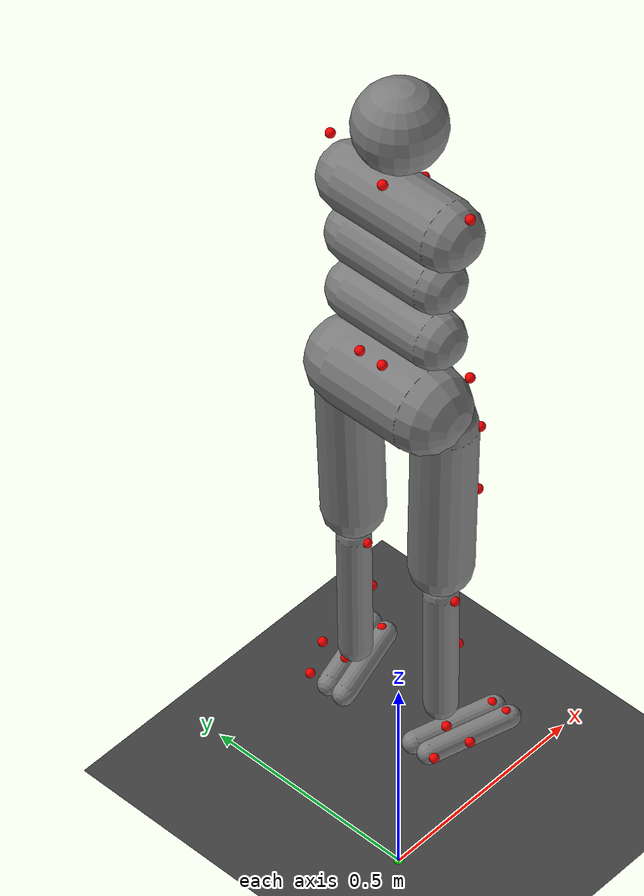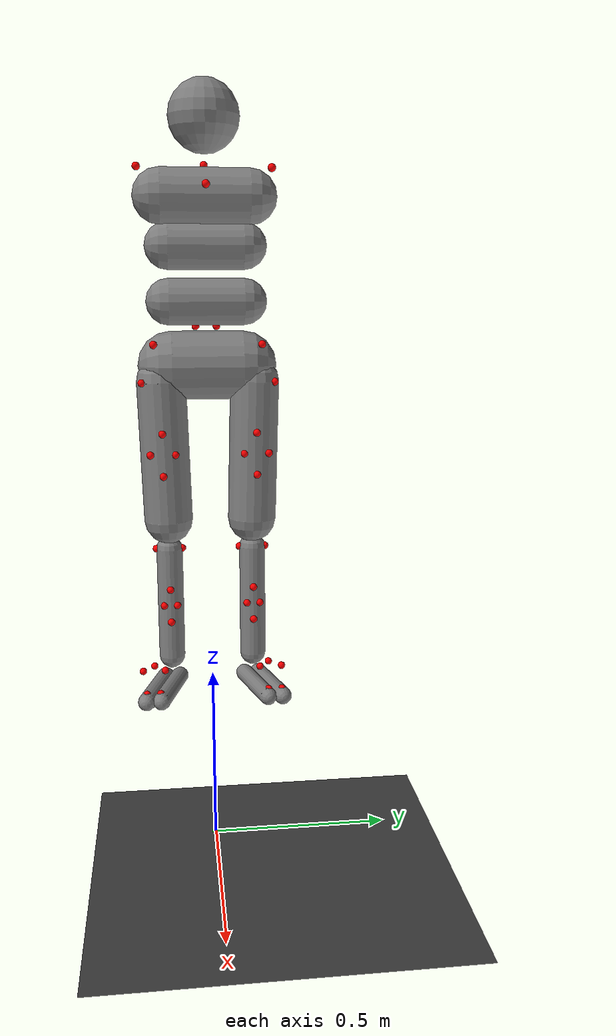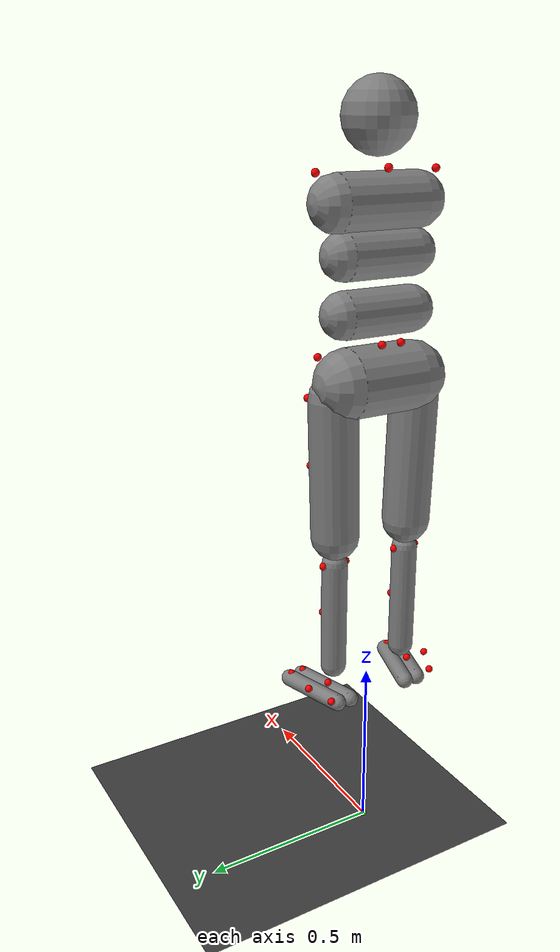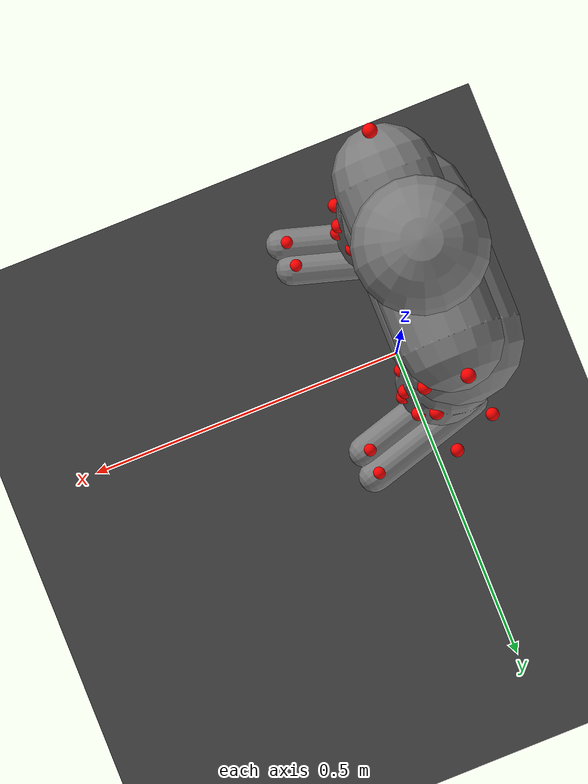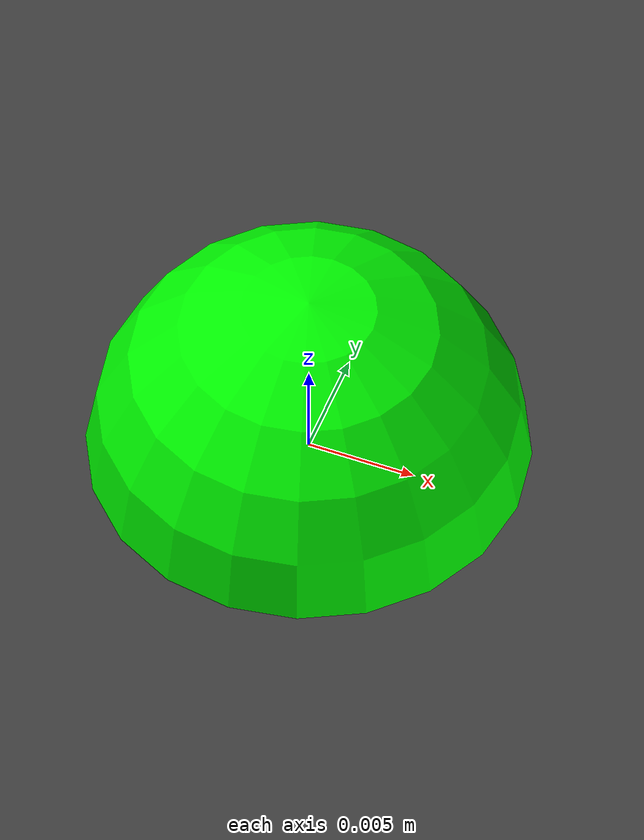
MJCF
<mujoco model="humanoid">
  <compiler settotalmass="50.0"/>
  <default>
    <default class="/"/>
    <default class="left_leg/"/>
    <default class="right_leg/"/>
  </default>
  <asset>
    <texture name="texplane" type="2d" builtin="checker" rgb1="0.20000000000000001 0.20000000000000001 0.20000000000000001" rgb2="0.29999999999999999 0.29999999999999999 0.29999999999999999" width="512" height="512"/>
    <material name="grid" class="/" texture="texplane" texrepeat="1 1" texuniform="true" reflectance="0.0"/>
  </asset>
  <worldbody>
    <geom name="floor" class="/" type="plane" conaffinity="1" size="100 100 0.20000000000000001" material="grid" pos="0 0 0"/>
    <body name="torso" pos="0 0 1.790750840394981">
      <light name="top" class="/" mode="trackcom" pos="0 0 2"/>
      <camera name="back" class="/" mode="trackcom" pos="-3 0 1" xyaxes="0 -1 0 1 0 2"/>
      <camera name="side" class="/" mode="trackcom" pos="0 -3 1" xyaxes="1 0 0 0 1 2"/>
      <freejoint name="root"/>
      <geom name="torso" class="/" type="capsule" size="0.070000000000000007" fromto="0 -0.1133612716477535 0 0 0.1133612716477535 0"/>
      <site name="C7" class="/" type="sphere" rgba="1 0 0 1" size="0.01" pos="-0.044999999999999978 0 0.077942286340599479"/>
      <site name="CLAV" class="/" type="sphere" rgba="1 0 0 1" size="0.01" pos="0.065778483455013595 0 0.023941410032796814"/>
      <site name="LSHO" class="/" type="sphere" rgba="1 0 0 1" size="0.01" pos="4.2862637970157367e-18 0.17004190747163025 0.070000000000000007"/>
      <site name="RSHO" class="/" type="sphere" rgba="1 0 0 1" size="0.01" pos="4.2862637970157367e-18 -0.17004190747163025 0.070000000000000007"/>
      <geom name="upper_waist" class="/" type="capsule" size="0.059999999999999998" fromto="-0.01 -0.097166804269502985 -0.12 -0.01 0.097166804269502985 -0.12"/>
      <body name="head" pos="0 0 0.19">
        <geom name="head" class="/" type="sphere" size="0.089999999999999997" pos="0 0 0"/>
      </body>
      <camera name="egocentric" class="/" fovy="80.0" pos="0.089999999999999997 0 0" xyaxes="0 -1 0 0.10000000000000001 1 2"/>
      <body name="lower_waist" pos="-0.01 0 -0.26000000000000001" quat="1 0 -0.002 0">
        <geom name="lower_waist" class="/" type="capsule" size="0.059999999999999998" fromto="0 -0.097166804269502985 0 0 0.097166804269502985 0"/>
        <joint name="abdomen_z" class="/" type="hinge" pos="0 0 0.065000000000000002" axis="0 0 1" limited="true" solimplimit="0 0.98999999999999999 0.01" stiffness="20.0" range="-45 45" armature="0.01" damping="5.0"/>
        <joint name="abdomen_y" class="/" type="hinge" pos="0 0 0.065000000000000002" axis="0 1 0" limited="true" solimplimit="0 0.98999999999999999 0.01" stiffness="10.0" range="-75 30" armature="0.01" damping="5.0"/>
        <body name="pelvis" pos="0 0 -0.16500000000000001" quat="1 0 -0.002 0">
          <joint name="abdomen_x" class="/" type="hinge" pos="0 0 0.10000000000000001" axis="1 0 0" limited="true" solimplimit="0 0.98999999999999999 0.01" stiffness="10.0" range="-35 35" armature="0.01" damping="5.0"/>
          <geom name="butt" class="/" type="capsule" size="0.089999999999999997" fromto="-0.02 -0.093361271647753513 0 -0.02 0.093361271647753513 0"/>
          <site name="LASI" class="/" type="sphere" rgba="1 0 0 1" size="0.01" pos="0.048943999880708008 0.14004190747163026 0.057850884871788529"/>
          <site name="LPSI" class="/" type="sphere" rgba="1 0 0 1" size="0.01" pos="-0.066488008791476927 0.028008381494326055 0.0996938565740315"/>
          <site name="RASI" class="/" type="sphere" rgba="1 0 0 1" size="0.01" pos="0.048943999880708008 -0.14004190747163026 0.057850884871788529"/>
          <site name="RPSI" class="/" type="sphere" rgba="1 0 0 1" size="0.01" pos="-0.066488008791476927 -0.028008381494326055 0.0996938565740315"/>
          <site name="left_leg_site" class="/" size="9.9999999999999995e-07 9.9999999999999995e-07 9.9999999999999995e-07" pos="0 0.12336127164775351 -0.040000000000000001"/>
          <body pos="0 0.12336127164775351 -0.040000000000000001" name="left_leg/">
            <body name="left_leg/thigh">
              <joint name="left_leg/hip_x" class="left_leg/" type="hinge" axis="1 0 0" limited="true" solimplimit="0 0.98999999999999999 0.01" stiffness="10.0" range="-25 5" armature="0.01" damping="5.0"/>
              <joint name="left_leg/hip_z" class="left_leg/" type="hinge" axis="0 0 1" limited="true" solimplimit="0 0.98999999999999999 0.01" stiffness="10.0" range="-60 35" armature="0.01" damping="5.0"/>
              <joint name="left_leg/hip_y" class="left_leg/" type="hinge" axis="0 1 0" limited="true" solimplimit="0 0.98999999999999999 0.01" stiffness="20.0" range="-110 20" armature="0.01" damping="5.0"/>
              <geom name="left_leg/thigh" class="left_leg/" type="capsule" size="0.064800587918351138" fromto="0 0 0 0 -0.01 -0.37368460417967581"/>
              <site name="left_leg/LGT" class="left_leg/" type="sphere" rgba="1 0 0 1" size="0.01" pos="0.041653015014319367 0.049640130285695673 0"/>
              <site name="left_leg/LT1" class="left_leg/" type="sphere" rgba="1 0 0 1" size="0.01" pos="0.064800587918351138 0 -0.13078961146288653"/>
              <site name="left_leg/LT2" class="left_leg/" type="sphere" rgba="1 0 0 1" size="0.01" pos="0.056118955317459064 0.032400293959175562 -0.1868423020898379"/>
              <site name="left_leg/LT3" class="left_leg/" type="sphere" rgba="1 0 0 1" size="0.01" pos="0.064800587918351138 0 -0.24289499271678927"/>
              <site name="left_leg/LT4" class="left_leg/" type="sphere" rgba="1 0 0 1" size="0.01" pos="0.056118955317459064 -0.032400293959175562 -0.1868423020898379"/>
              <body name="left_leg/shin" pos="0 -0.01 -0.45493333095078076">
                <joint name="left_leg/knee" class="left_leg/" type="hinge" pos="0 0 0.02" axis="0 -1 0" limited="true" solimplimit="0 0.98999999999999999 0.01" stiffness="1.0" range="-160 2" armature="0.01" damping="0.2"/>
                <geom name="left_leg/shin" class="left_leg/" type="capsule" size="0.035119856339967746" fromto="0 0 0 0 0 -0.30955686011002925"/>
                <site name="left_leg/LKNL" class="left_leg/" type="sphere" rgba="1 0 0 1" size="0.01" pos="2.1504709826628188e-18 0.035119856339967746 0"/>
                <site name="left_leg/LKNM" class="left_leg/" type="sphere" rgba="1 0 0 1" size="0.01" pos="-6.4514129479884569e-18 -0.035119856339967746 0"/>
                <site name="left_leg/LS1" class="left_leg/" type="sphere" rgba="1 0 0 1" size="0.01" pos="0.035119856339967746 0 -0.10834490103851024"/>
                <site name="left_leg/LS2" class="left_leg/" type="sphere" rgba="1 0 0 1" size="0.01" pos="0.030414687767672047 0.01755992816998387 -0.15477843005501463"/>
                <site name="left_leg/LS3" class="left_leg/" type="sphere" rgba="1 0 0 1" size="0.01" pos="0.035119856339967746 0 -0.20121195907151901"/>
                <site name="left_leg/LS4" class="left_leg/" type="sphere" rgba="1 0 0 1" size="0.01" pos="0.030414687767672047 -0.01755992816998387 -0.15477843005501463"/>
                <body name="left_leg/foot" pos="0 0 -0.39608696378002917">
                  <joint name="left_leg/ankle_y" class="left_leg/" type="hinge" pos="0 0 0.080000000000000002" axis="0 1 0" limited="true" solimplimit="0 0.98999999999999999 0.01" stiffness="6.0" range="-50 50" armature="0.01" damping="0.2"/>
                  <joint name="left_leg/ankle_x" class="left_leg/" type="hinge" pos="0 0 0.040000000000000001" axis="1 0 0.5" limited="true" solimplimit="0 0.98999999999999999 0.01" stiffness="3.0" range="-50 50" armature="0.01" damping="0.2"/>
                  <geom name="left_leg/right_foot" class="left_leg/" type="capsule" size="0.023530103669999927" fromto="-0.056505958716666388 0.02 0 0.11958222360859258 0.071823548337819523 0"/>
                  <geom name="left_leg/left_foot" class="left_leg/" type="capsule" size="0.023530103669999927" fromto="-0.056505958716666388 -0.02 0 0.11958222360859258 0.031823548337819529 0"/>
                  <site name="left_leg/LANL" class="left_leg/" type="sphere" rgba="1 0 0 1" size="0.01" pos="-0.0069237351080738132 0.082633446491684887 0.03671780681233075"/>
                  <site name="left_leg/LANM" class="left_leg/" type="sphere" rgba="1 0 0 1" size="0.01" pos="-0.0069237351080738132 0.02101365018395417 0.03671780681233075"/>
                  <site name="left_leg/LHEE" class="left_leg/" type="sphere" rgba="1 0 0 1" size="0.01" pos="-0.075553204145573608 0.051823548337819526 0.023530103669999927"/>
                  <site name="left_leg/LM1" class="left_leg/" type="sphere" rgba="1 0 0 1" size="0.01" pos="0.11203401122359249 0.033336552929953508 0.018486995407866021"/>
                  <site name="left_leg/LM5" class="left_leg/" type="sphere" rgba="1 0 0 1" size="0.01" pos="0.11203401122359249 0.070310543745685544 0.018486995407866018"/>
                  <body name="left_leg/ffp_0_0" pos="-0.070000000000000007 -0.043530103669999931 -0.023530103669999927"/>
                  <body name="left_leg/ffp_0_1" pos="-0.070000000000000007 -0.02 -0.023530103669999927"/>
                  <body name="left_leg/ffp_0_2" pos="-0.070000000000000007 0.0035301036699999268 -0.023530103669999927"/>
                  <body name="left_leg/ffp_0_3" pos="-0.070000000000000007 0.027060207339999851 -0.023530103669999927"/>
                  <body name="left_leg/ffp_1_0" pos="-0.047123510320833409 -0.043530103669999931 -0.023530103669999927"/>
                  <body name="left_leg/ffp_1_1" pos="-0.047123510320833409 -0.02 -0.023530103669999927"/>
                  <body name="left_leg/ffp_1_2" pos="-0.047123510320833409 0.0035301036699999268 -0.023530103669999927"/>
                  <body name="left_leg/ffp_1_3" pos="-0.047123510320833409 0.027060207339999851 -0.023530103669999927"/>
                  <body name="left_leg/ffp_2_0" pos="-0.024247020641666811 -0.043530103669999931 -0.023530103669999927"/>
                  <body name="left_leg/ffp_2_1" pos="-0.024247020641666811 -0.02 -0.023530103669999927"/>
                  <body name="left_leg/ffp_2_2" pos="-0.024247020641666811 0.0035301036699999268 -0.023530103669999927"/>
                  <body name="left_leg/ffp_2_3" pos="-0.024247020641666811 0.027060207339999851 -0.023530103669999927"/>
                  <body name="left_leg/ffp_3_0" pos="-0.0013705309625002132 -0.043530103669999931 -0.023530103669999927"/>
                  <body name="left_leg/ffp_3_1" pos="-0.0013705309625002132 -0.02 -0.023530103669999927"/>
                  <body name="left_leg/ffp_3_2" pos="-0.0013705309625002132 0.0035301036699999268 -0.023530103669999927"/>
                  <body name="left_leg/ffp_3_3" pos="-0.0013705309625002132 0.027060207339999851 -0.023530103669999927"/>
                  <body name="left_leg/ffp_4_0" pos="0.021505958716666385 -0.043530103669999931 -0.023530103669999927"/>
                  <body name="left_leg/ffp_4_1" pos="0.021505958716666385 -0.02 -0.023530103669999927"/>
                  <body name="left_leg/ffp_4_2" pos="0.021505958716666385 0.0035301036699999268 -0.023530103669999927"/>
                  <body name="left_leg/ffp_4_3" pos="0.021505958716666385 0.027060207339999851 -0.023530103669999927"/>
                  <body name="left_leg/ffp_5_0" pos="0.044382448395832982 -0.043530103669999931 -0.023530103669999927"/>
                  <body name="left_leg/ffp_5_1" pos="0.044382448395832982 -0.02 -0.023530103669999927"/>
                  <body name="left_leg/ffp_5_2" pos="0.044382448395832982 0.0035301036699999268 -0.023530103669999927"/>
                  <body name="left_leg/ffp_5_3" pos="0.044382448395832982 0.027060207339999851 -0.023530103669999927"/>
                  <body name="left_leg/ffp_6_0" pos="0.06725893807499958 -0.043530103669999931 -0.023530103669999927"/>
                  <body name="left_leg/ffp_6_1" pos="0.06725893807499958 -0.02 -0.023530103669999927"/>
                  <body name="left_leg/ffp_6_2" pos="0.06725893807499958 0.0035301036699999268 -0.023530103669999927"/>
                  <body name="left_leg/ffp_6_3" pos="0.06725893807499958 0.027060207339999851 -0.023530103669999927"/>
                  <body name="left_leg/ffp_7_0" pos="0.090135427754166164 -0.043530103669999931 -0.023530103669999927"/>
                  <body name="left_leg/ffp_7_1" pos="0.090135427754166164 -0.02 -0.023530103669999927"/>
                  <body name="left_leg/ffp_7_2" pos="0.090135427754166164 0.0035301036699999268 -0.023530103669999927"/>
                  <body name="left_leg/ffp_7_3" pos="0.090135427754166164 0.027060207339999851 -0.023530103669999927"/>
                </body>
              </body>
            </body>
          </body>
          <site name="right_leg_site" class="/" size="9.9999999999999995e-07 9.9999999999999995e-07 9.9999999999999995e-07" pos="0 -0.12336127164775351 -0.040000000000000001"/>
          <body pos="0 -0.12336127164775351 -0.040000000000000001" name="right_leg/">
            <body name="right_leg/thigh">
              <joint name="right_leg/hip_x" class="right_leg/" type="hinge" axis="1 0 0" limited="true" solimplimit="0 0.98999999999999999 0.01" stiffness="10.0" range="-25 5" armature="0.01" damping="5.0"/>
              <joint name="right_leg/hip_z" class="right_leg/" type="hinge" axis="0 0 1" limited="true" solimplimit="0 0.98999999999999999 0.01" stiffness="10.0" range="-60 35" armature="0.01" damping="5.0"/>
              <joint name="right_leg/hip_y" class="right_leg/" type="hinge" axis="0 1 0" limited="true" solimplimit="0 0.98999999999999999 0.01" stiffness="20.0" range="-110 20" armature="0.01" damping="5.0"/>
              <geom name="right_leg/thigh" class="right_leg/" type="capsule" size="0.064800587918351138" fromto="0 0 0 0 0.01 -0.37368460417967581"/>
              <site name="right_leg/RGT" class="right_leg/" type="sphere" rgba="1 0 0 1" size="0.01" pos="0.04165301501431936 -0.04964013028569568 0"/>
              <site name="right_leg/RT1" class="right_leg/" type="sphere" rgba="1 0 0 1" size="0.01" pos="0.064800587918351138 0 -0.13078961146288653"/>
              <site name="right_leg/RT2" class="right_leg/" type="sphere" rgba="1 0 0 1" size="0.01" pos="0.056118955317459064 0.032400293959175562 -0.1868423020898379"/>
              <site name="right_leg/RT3" class="right_leg/" type="sphere" rgba="1 0 0 1" size="0.01" pos="0.064800587918351138 0 -0.24289499271678927"/>
              <site name="right_leg/RT4" class="right_leg/" type="sphere" rgba="1 0 0 1" size="0.01" pos="0.056118955317459064 -0.032400293959175562 -0.1868423020898379"/>
              <body name="right_leg/shin" pos="0 0.01 -0.45493333095078076">
                <joint name="right_leg/knee" class="right_leg/" type="hinge" pos="0 0 0.02" axis="0 -1 0" limited="true" solimplimit="0 0.98999999999999999 0.01" stiffness="1.0" range="-160 2" armature="0.01" damping="0.2"/>
                <geom name="right_leg/shin" class="right_leg/" type="capsule" size="0.035119856339967746" fromto="0 0 0 0 0 -0.30955686011002925"/>
                <site name="right_leg/RKNL" class="right_leg/" type="sphere" rgba="1 0 0 1" size="0.01" pos="-6.4514129479884569e-18 -0.035119856339967746 0"/>
                <site name="right_leg/RKNM" class="right_leg/" type="sphere" rgba="1 0 0 1" size="0.01" pos="2.1504709826628188e-18 0.035119856339967746 0"/>
                <site name="right_leg/RS1" class="right_leg/" type="sphere" rgba="1 0 0 1" size="0.01" pos="0.035119856339967746 0 -0.10834490103851024"/>
                <site name="right_leg/RS2" class="right_leg/" type="sphere" rgba="1 0 0 1" size="0.01" pos="0.030414687767672047 0.01755992816998387 -0.15477843005501463"/>
                <site name="right_leg/RS3" class="right_leg/" type="sphere" rgba="1 0 0 1" size="0.01" pos="0.035119856339967746 0 -0.20121195907151901"/>
                <site name="right_leg/RS4" class="right_leg/" type="sphere" rgba="1 0 0 1" size="0.01" pos="0.030414687767672047 -0.01755992816998387 -0.15477843005501463"/>
                <body name="right_leg/foot" pos="0 0 -0.39608696378002917">
                  <joint name="right_leg/ankle_y" class="right_leg/" type="hinge" pos="0 0 0.080000000000000002" axis="0 1 0" limited="true" solimplimit="0 0.98999999999999999 0.01" stiffness="6.0" range="-50 50" armature="0.01" damping="0.2"/>
                  <joint name="right_leg/ankle_x" class="right_leg/" type="hinge" pos="0 0 0.040000000000000001" axis="1 0 0.5" limited="true" solimplimit="0 0.98999999999999999 0.01" stiffness="3.0" range="-50 50" armature="0.01" damping="0.2"/>
                  <geom name="right_leg/right_foot" class="right_leg/" type="capsule" size="0.023530103669999927" fromto="-0.056505958716666388 -0.02 0 0.11958222360859258 -0.071823548337819523 0"/>
                  <geom name="right_leg/left_foot" class="right_leg/" type="capsule" size="0.023530103669999927" fromto="-0.056505958716666388 0.02 0 0.11958222360859258 -0.031823548337819529 0"/>
                  <site name="right_leg/RANL" class="right_leg/" type="sphere" rgba="1 0 0 1" size="0.01" pos="-0.0069237351080738132 -0.082633446491684887 0.03671780681233075"/>
                  <site name="right_leg/RANM" class="right_leg/" type="sphere" rgba="1 0 0 1" size="0.01" pos="-0.0069237351080738132 -0.02101365018395417 0.03671780681233075"/>
                  <site name="right_leg/RHEE" class="right_leg/" type="sphere" rgba="1 0 0 1" size="0.01" pos="-0.075553204145573608 -0.051823548337819526 0.023530103669999927"/>
                  <site name="right_leg/RM1" class="right_leg/" type="sphere" rgba="1 0 0 1" size="0.01" pos="0.11203401122359249 -0.033336552929953508 0.018486995407866018"/>
                  <site name="right_leg/RM5" class="right_leg/" type="sphere" rgba="1 0 0 1" size="0.01" pos="0.11203401122359249 -0.070310543745685544 0.018486995407866021"/>
                  <body name="right_leg/ffp_0_0" pos="-0.070000000000000007 -0.043530103669999931 -0.023530103669999927"/>
                  <body name="right_leg/ffp_0_1" pos="-0.070000000000000007 -0.02 -0.023530103669999927"/>
                  <body name="right_leg/ffp_0_2" pos="-0.070000000000000007 0.0035301036699999268 -0.023530103669999927"/>
                  <body name="right_leg/ffp_0_3" pos="-0.070000000000000007 0.027060207339999851 -0.023530103669999927"/>
                  <body name="right_leg/ffp_1_0" pos="-0.047123510320833409 -0.043530103669999931 -0.023530103669999927"/>
                  <body name="right_leg/ffp_1_1" pos="-0.047123510320833409 -0.02 -0.023530103669999927"/>
                  <body name="right_leg/ffp_1_2" pos="-0.047123510320833409 0.0035301036699999268 -0.023530103669999927"/>
                  <body name="right_leg/ffp_1_3" pos="-0.047123510320833409 0.027060207339999851 -0.023530103669999927"/>
                  <body name="right_leg/ffp_2_0" pos="-0.024247020641666811 -0.043530103669999931 -0.023530103669999927"/>
                  <body name="right_leg/ffp_2_1" pos="-0.024247020641666811 -0.02 -0.023530103669999927"/>
                  <body name="right_leg/ffp_2_2" pos="-0.024247020641666811 0.0035301036699999268 -0.023530103669999927"/>
                  <body name="right_leg/ffp_2_3" pos="-0.024247020641666811 0.027060207339999851 -0.023530103669999927"/>
                  <body name="right_leg/ffp_3_0" pos="-0.0013705309625002132 -0.043530103669999931 -0.023530103669999927"/>
                  <body name="right_leg/ffp_3_1" pos="-0.0013705309625002132 -0.02 -0.023530103669999927"/>
                  <body name="right_leg/ffp_3_2" pos="-0.0013705309625002132 0.0035301036699999268 -0.023530103669999927"/>
                  <body name="right_leg/ffp_3_3" pos="-0.0013705309625002132 0.027060207339999851 -0.023530103669999927"/>
                  <body name="right_leg/ffp_4_0" pos="0.021505958716666385 -0.043530103669999931 -0.023530103669999927"/>
                  <body name="right_leg/ffp_4_1" pos="0.021505958716666385 -0.02 -0.023530103669999927"/>
                  <body name="right_leg/ffp_4_2" pos="0.021505958716666385 0.0035301036699999268 -0.023530103669999927"/>
                  <body name="right_leg/ffp_4_3" pos="0.021505958716666385 0.027060207339999851 -0.023530103669999927"/>
                  <body name="right_leg/ffp_5_0" pos="0.044382448395832982 -0.043530103669999931 -0.023530103669999927"/>
                  <body name="right_leg/ffp_5_1" pos="0.044382448395832982 -0.02 -0.023530103669999927"/>
                  <body name="right_leg/ffp_5_2" pos="0.044382448395832982 0.0035301036699999268 -0.023530103669999927"/>
                  <body name="right_leg/ffp_5_3" pos="0.044382448395832982 0.027060207339999851 -0.023530103669999927"/>
                  <body name="right_leg/ffp_6_0" pos="0.06725893807499958 -0.043530103669999931 -0.023530103669999927"/>
                  <body name="right_leg/ffp_6_1" pos="0.06725893807499958 -0.02 -0.023530103669999927"/>
                  <body name="right_leg/ffp_6_2" pos="0.06725893807499958 0.0035301036699999268 -0.023530103669999927"/>
                  <body name="right_leg/ffp_6_3" pos="0.06725893807499958 0.027060207339999851 -0.023530103669999927"/>
                  <body name="right_leg/ffp_7_0" pos="0.090135427754166164 -0.043530103669999931 -0.023530103669999927"/>
                  <body name="right_leg/ffp_7_1" pos="0.090135427754166164 -0.02 -0.023530103669999927"/>
                  <body name="right_leg/ffp_7_2" pos="0.090135427754166164 0.0035301036699999268 -0.023530103669999927"/>
                  <body name="right_leg/ffp_7_3" pos="0.090135427754166164 0.027060207339999851 -0.023530103669999927"/>
                </body>
              </body>
            </body>
          </body>
        </body>
      </body>
    </body>
    <body name="m0" mocap="true" pos="0 0 0">
      <geom name="m0" class="/" type="sphere" size="0.01" rgba="0 1 0 1" mass="0.0"/>
    </body>
    <body name="m1" mocap="true" pos="0 0 0">
      <geom name="m1" class="/" type="sphere" size="0.01" rgba="0 1 0 1" mass="0.0"/>
    </body>
    <body name="m2" mocap="true" pos="0 0 0">
      <geom name="m2" class="/" type="sphere" size="0.01" rgba="0 1 0 1" mass="0.0"/>
    </body>
    <body name="m3" mocap="true" pos="0 0 0">
      <geom name="m3" class="/" type="sphere" size="0.01" rgba="0 1 0 1" mass="0.0"/>
    </body>
    <body name="m4" mocap="true" pos="0 0 0">
      <geom name="m4" class="/" type="sphere" size="0.01" rgba="0 1 0 1" mass="0.0"/>
    </body>
    <body name="m5" mocap="true" pos="0 0 0">
      <geom name="m5" class="/" type="sphere" size="0.01" rgba="0 1 0 1" mass="0.0"/>
    </body>
    <body name="m6" mocap="true" pos="0 0 0">
      <geom name="m6" class="/" type="sphere" size="0.01" rgba="0 1 0 1" mass="0.0"/>
    </body>
    <body name="m7" mocap="true" pos="0 0 0">
      <geom name="m7" class="/" type="sphere" size="0.01" rgba="0 1 0 1" mass="0.0"/>
    </body>
    <body name="m8" mocap="true" pos="0 0 0">
      <geom name="m8" class="/" type="sphere" size="0.01" rgba="0 1 0 1" mass="0.0"/>
    </body>
    <body name="m9" mocap="true" pos="0 0 0">
      <geom name="m9" class="/" type="sphere" size="0.01" rgba="0 1 0 1" mass="0.0"/>
    </body>
    <body name="m10" mocap="true" pos="0 0 0">
      <geom name="m10" class="/" type="sphere" size="0.01" rgba="0 1 0 1" mass="0.0"/>
    </body>
    <body name="m11" mocap="true" pos="0 0 0">
      <geom name="m11" class="/" type="sphere" size="0.01" rgba="0 1 0 1" mass="0.0"/>
    </body>
    <body name="m12" mocap="true" pos="0 0 0">
      <geom name="m12" class="/" type="sphere" size="0.01" rgba="0 1 0 1" mass="0.0"/>
    </body>
    <body name="m13" mocap="true" pos="0 0 0">
      <geom name="m13" class="/" type="sphere" size="0.01" rgba="0 1 0 1" mass="0.0"/>
    </body>
    <body name="m14" mocap="true" pos="0 0 0">
      <geom name="m14" class="/" type="sphere" size="0.01" rgba="0 1 0 1" mass="0.0"/>
    </body>
    <body name="m15" mocap="true" pos="0 0 0">
      <geom name="m15" class="/" type="sphere" size="0.01" rgba="0 1 0 1" mass="0.0"/>
    </body>
    <body name="m16" mocap="true" pos="0 0 0">
      <geom name="m16" class="/" type="sphere" size="0.01" rgba="0 1 0 1" mass="0.0"/>
    </body>
    <body name="m17" mocap="true" pos="0 0 0">
      <geom name="m17" class="/" type="sphere" size="0.01" rgba="0 1 0 1" mass="0.0"/>
    </body>
    <body name="m18" mocap="true" pos="0 0 0">
      <geom name="m18" class="/" type="sphere" size="0.01" rgba="0 1 0 1" mass="0.0"/>
    </body>
    <body name="m19" mocap="true" pos="0 0 0">
      <geom name="m19" class="/" type="sphere" size="0.01" rgba="0 1 0 1" mass="0.0"/>
    </body>
    <body name="m20" mocap="true" pos="0 0 0">
      <geom name="m20" class="/" type="sphere" size="0.01" rgba="0 1 0 1" mass="0.0"/>
    </body>
    <body name="m21" mocap="true" pos="0 0 0">
      <geom name="m21" class="/" type="sphere" size="0.01" rgba="0 1 0 1" mass="0.0"/>
    </body>
    <body name="m22" mocap="true" pos="0 0 0">
      <geom name="m22" class="/" type="sphere" size="0.01" rgba="0 1 0 1" mass="0.0"/>
    </body>
    <body name="m23" mocap="true" pos="0 0 0">
      <geom name="m23" class="/" type="sphere" size="0.01" rgba="0 1 0 1" mass="0.0"/>
    </body>
    <body name="m24" mocap="true" pos="0 0 0">
      <geom name="m24" class="/" type="sphere" size="0.01" rgba="0 1 0 1" mass="0.0"/>
    </body>
    <body name="m25" mocap="true" pos="0 0 0">
      <geom name="m25" class="/" type="sphere" size="0.01" rgba="0 1 0 1" mass="0.0"/>
    </body>
    <body name="m26" mocap="true" pos="0 0 0">
      <geom name="m26" class="/" type="sphere" size="0.01" rgba="0 1 0 1" mass="0.0"/>
    </body>
    <body name="m27" mocap="true" pos="0 0 0">
      <geom name="m27" class="/" type="sphere" size="0.01" rgba="0 1 0 1" mass="0.0"/>
    </body>
    <body name="m28" mocap="true" pos="0 0 0">
      <geom name="m28" class="/" type="sphere" size="0.01" rgba="0 1 0 1" mass="0.0"/>
    </body>
    <body name="m29" mocap="true" pos="0 0 0">
      <geom name="m29" class="/" type="sphere" size="0.01" rgba="0 1 0 1" mass="0.0"/>
    </body>
    <body name="m30" mocap="true" pos="0 0 0">
      <geom name="m30" class="/" type="sphere" size="0.01" rgba="0 1 0 1" mass="0.0"/>
    </body>
    <body name="m31" mocap="true" pos="0 0 0">
      <geom name="m31" class="/" type="sphere" size="0.01" rgba="0 1 0 1" mass="0.0"/>
    </body>
    <body name="m32" mocap="true" pos="0 0 0">
      <geom name="m32" class="/" type="sphere" size="0.01" rgba="0 1 0 1" mass="0.0"/>
    </body>
    <body name="m33" mocap="true" pos="0 0 0">
      <geom name="m33" class="/" type="sphere" size="0.01" rgba="0 1 0 1" mass="0.0"/>
    </body>
    <body name="m34" mocap="true" pos="0 0 0">
      <geom name="m34" class="/" type="sphere" size="0.01" rgba="0 1 0 1" mass="0.0"/>
    </body>
    <body name="m35" mocap="true" pos="0 0 0">
      <geom name="m35" class="/" type="sphere" size="0.01" rgba="0 1 0 1" mass="0.0"/>
    </body>
    <body name="m36" mocap="true" pos="0 0 0">
      <geom name="m36" class="/" type="sphere" size="0.01" rgba="0 1 0 1" mass="0.0"/>
    </body>
    <body name="m37" mocap="true" pos="0 0 0">
      <geom name="m37" class="/" type="sphere" size="0.01" rgba="0 1 0 1" mass="0.0"/>
    </body>
    <body name="m38" mocap="true" pos="0 0 0">
      <geom name="m38" class="/" type="sphere" size="0.01" rgba="0 1 0 1" mass="0.0"/>
    </body>
    <body name="m39" mocap="true" pos="0 0 0">
      <geom name="m39" class="/" type="sphere" size="0.01" rgba="0 1 0 1" mass="0.0"/>
    </body>
  </worldbody>
  <equality>
    <weld name="world_root" class="/" active="false" body1="torso" relpose="0 0 -2 1 0 0 0"/>
    <joint name="abdomen_y" class="/" active="true" joint1="abdomen_y"/>
    <joint name="abdomen_z" class="/" active="true" joint1="abdomen_z"/>
    <joint name="abdomen_x" class="/" active="true" joint1="abdomen_x"/>
  </equality>
  <actuator>
    <motor name="abdomen_z" class="/" gear="40" joint="abdomen_z"/>
    <motor name="abdomen_y" class="/" gear="40" joint="abdomen_y"/>
    <motor name="abdomen_x" class="/" gear="40" joint="abdomen_x"/>
    <motor name="left_leg/hip_x" class="left_leg/" gear="40" joint="left_leg/hip_x"/>
    <motor name="left_leg/hip_z" class="left_leg/" gear="40" joint="left_leg/hip_z"/>
    <motor name="left_leg/hip_y" class="left_leg/" gear="120" joint="left_leg/hip_y"/>
    <motor name="left_leg/knee" class="left_leg/" gear="80" joint="left_leg/knee"/>
    <motor name="left_leg/ankle_y" class="left_leg/" gear="20" joint="left_leg/ankle_y"/>
    <motor name="left_leg/ankle_x" class="left_leg/" gear="20" joint="left_leg/ankle_x"/>
    <motor name="right_leg/hip_x" class="right_leg/" gear="40" joint="right_leg/hip_x"/>
    <motor name="right_leg/hip_z" class="right_leg/" gear="40" joint="right_leg/hip_z"/>
    <motor name="right_leg/hip_y" class="right_leg/" gear="120" joint="right_leg/hip_y"/>
    <motor name="right_leg/knee" class="right_leg/" gear="80" joint="right_leg/knee"/>
    <motor name="right_leg/ankle_y" class="right_leg/" gear="20" joint="right_leg/ankle_y"/>
    <motor name="right_leg/ankle_x" class="right_leg/" gear="20" joint="right_leg/ankle_x"/>
  </actuator>
</mujoco>
